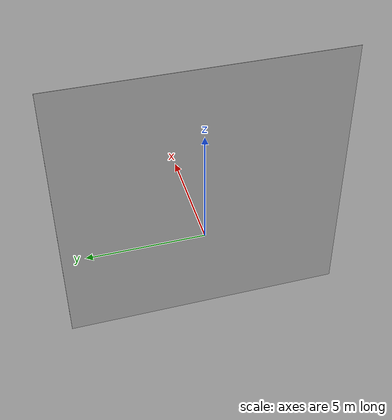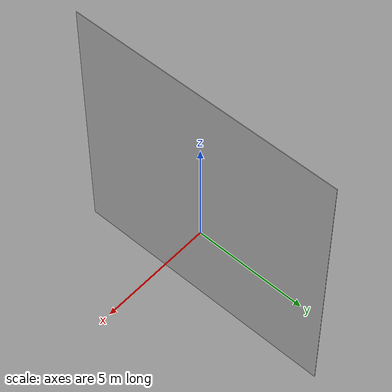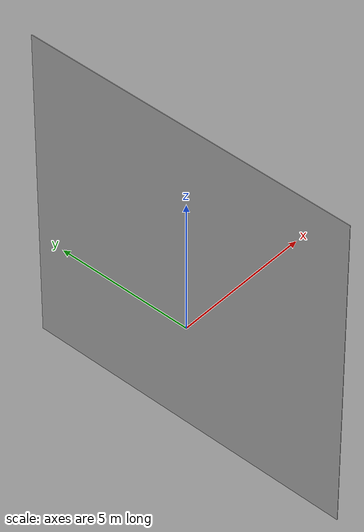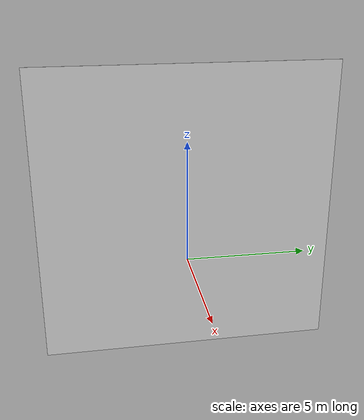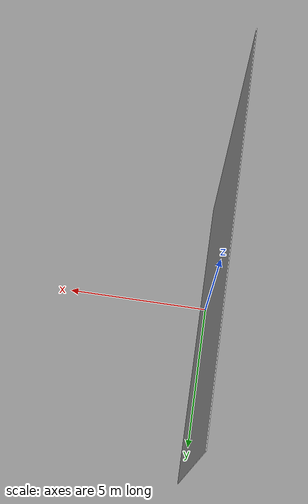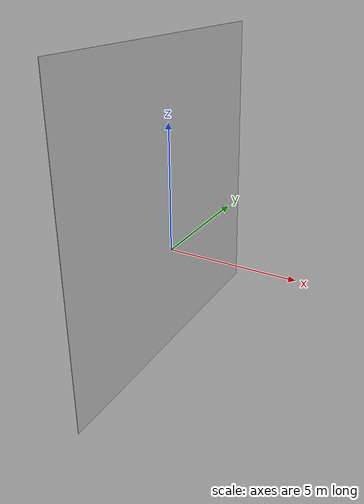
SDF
<?xml version="1.0"?>
<sdf version="1.7">
  <world name="planar_range_4m">
    <physics name="1ms" type="ignored">
      <max_step_size>0.001</max_step_size>
      <real_time_factor>1.0</real_time_factor>
    </physics>

    <plugin filename="gz-sim-physics-system"
            name="gz::sim::systems::Physics"/>
    <plugin filename="gz-sim-sensors-system"
            name="gz::sim::systems::Sensors">
      <render_engine>ogre2</render_engine>
    </plugin>
    <plugin filename="gz-sim-user-commands-system"
            name="gz::sim::systems::UserCommands"/>
    <plugin filename="gz-sim-scene-broadcaster-system"
            name="gz::sim::systems::SceneBroadcaster"/>
    <plugin filename="multibeam_sonar_system"
            name="custom::MultibeamSonarSystem"/>

    <scene>
      <ambient>0.5 0.5 0.5 1</ambient>
      <background>0.1 0.1 0.1 1</background>
    </scene>

    <!--
      Sensor spawn: x=4, y=0, z=2, yaw=pi.
      It looks toward world -X.
      Box centre x=0, thickness=0.02 m.
      Nearest face x=0.01, so expected centre range = 4.00 - 0.01 = 3.99 m.
    -->
    <model name="planar_target_4m">
      <static>true</static>
      <pose>0 0 2 0 0 0</pose>
      <link name="plane_link">
        <collision name="plane_collision">
          <geometry>
            <box>
              <size>0.02 12 12</size>
            </box>
          </geometry>
        </collision>
        <visual name="plane_visual">
          <geometry>
            <box>
              <size>0.02 12 12</size>
            </box>
          </geometry>
          <material>
            <ambient>0.8 0.8 0.8 1</ambient>
            <diffuse>0.8 0.8 0.8 1</diffuse>
          </material>
        </visual>
      </link>
    </model>
  </world>
</sdf>
